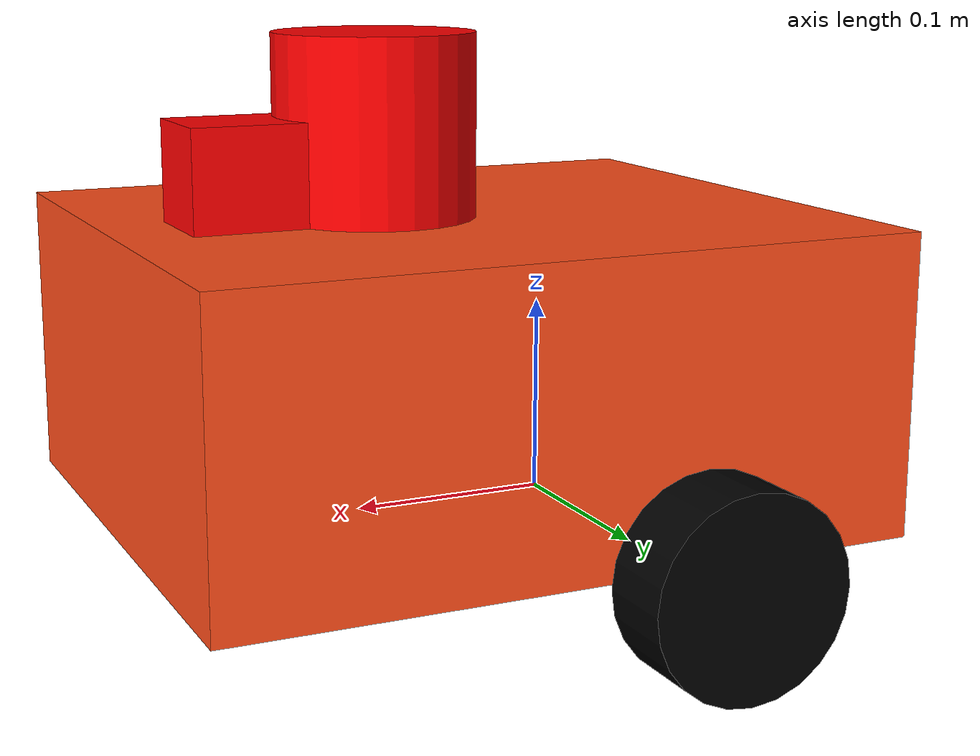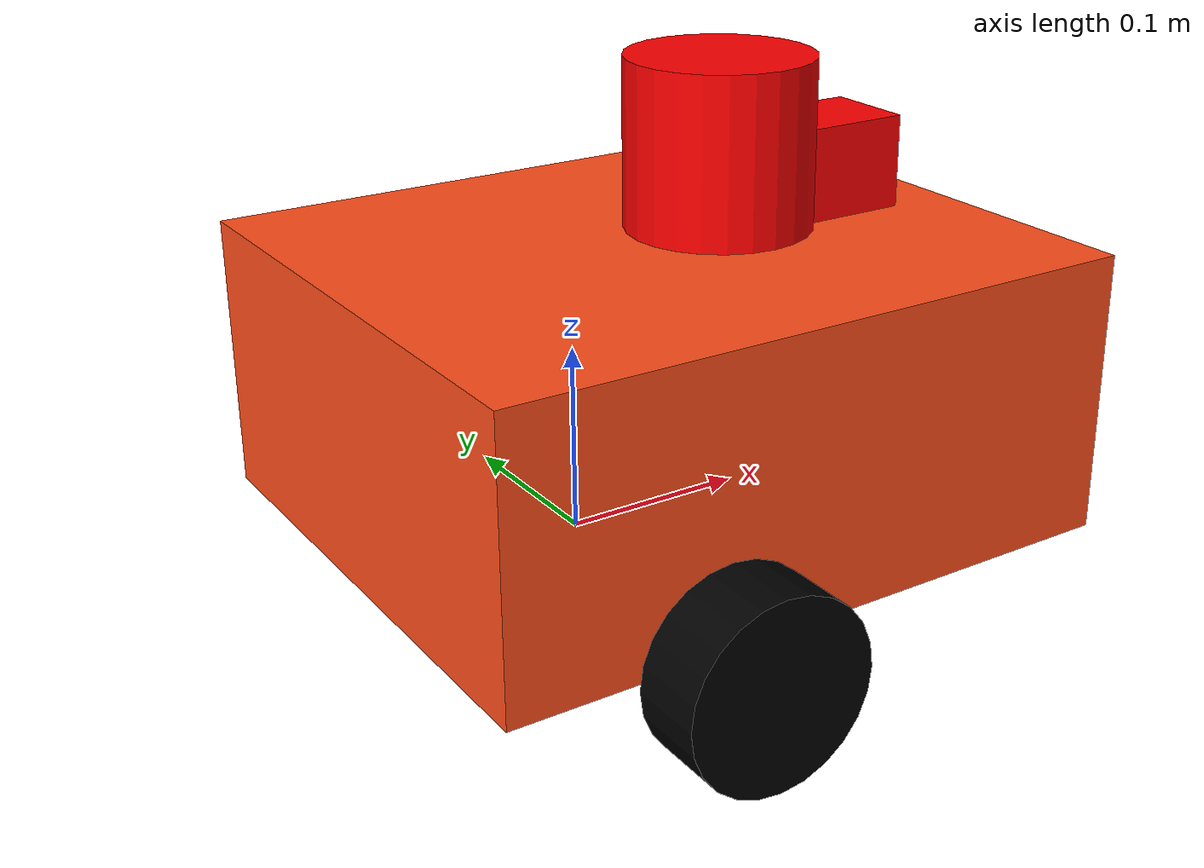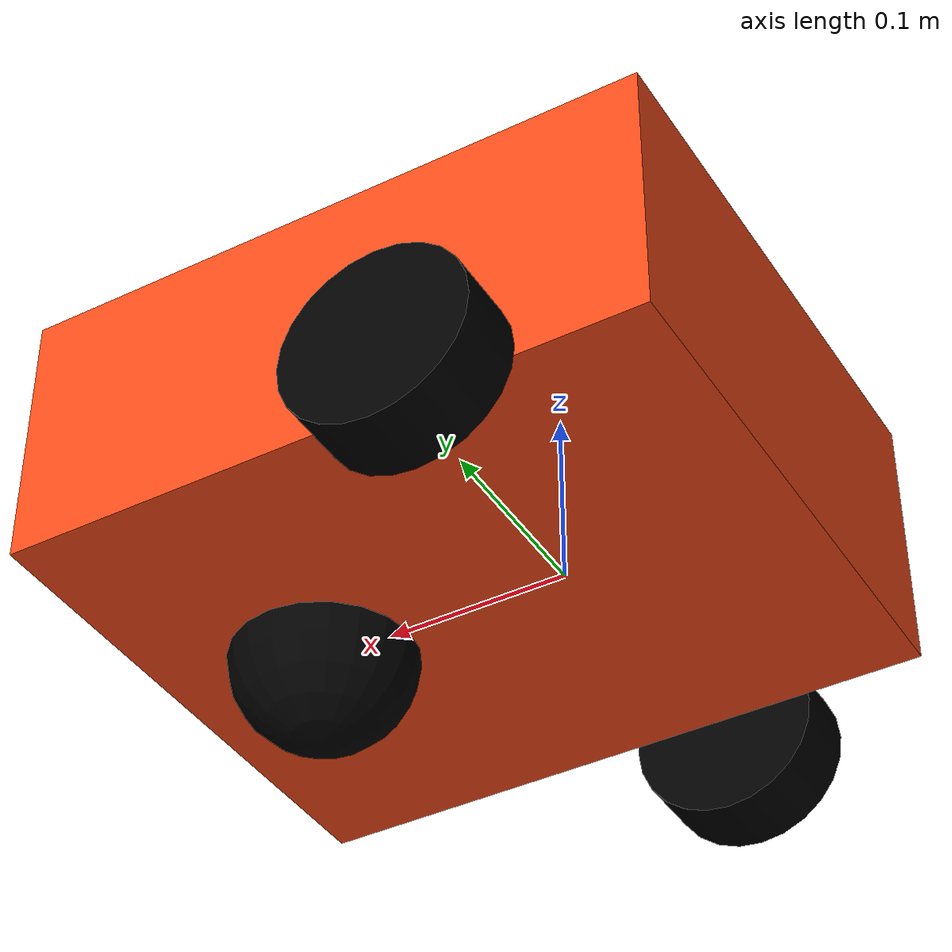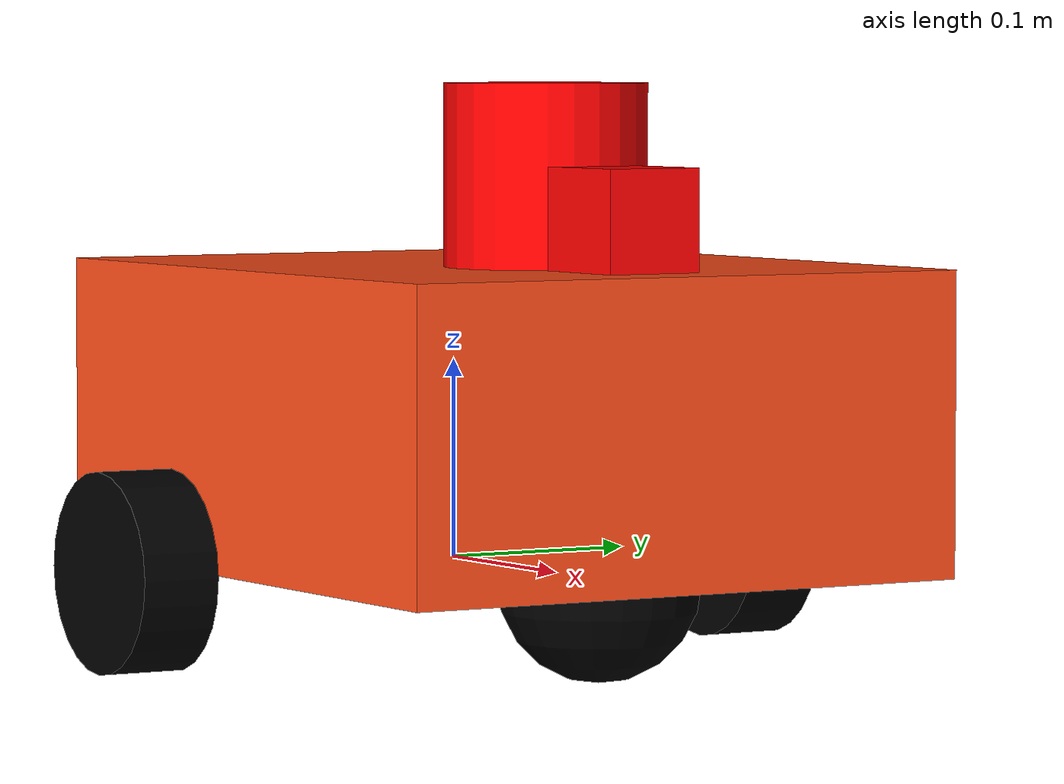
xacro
<?xml version='1.0'?>

<robot name="my_robot" xmlns:xacro="http://www.ros.org/wiki/xacro">

    <material name = "orange">
        <color rgba = "1 0.3 0.1 1"/>
    </material>
    <material name = "red">
        <color rgba = "1 0 0 1"/>
    </material>
    <material name = "black">
        <color rgba = "0 0 0 1"/>
    </material>

    <!--Base linkd-->
    <link name = "base_link">

    </link>

    <!--Chassis link-->
    <joint name = "chassis_joint" type = "fixed">
        <parent link= "base_link"/>
        <child link = "chassis"/>
        <origin xyz = "-0.1 0 0"/>
    </joint>

    <link name = "chassis">
        <visual>
            <material name = "orange"/>
            <origin xyz = "0.15 0 0.075"/>
            <geometry>
                <box size = "0.35 0.3 0.15"/>
            </geometry>
        </visual>
        <collision>
            <origin xyz = "0.15 0 0.075"/>
            <geometry>
                <box size = "0.35 0.3 0.15"/>
            </geometry>
        </collision>
        <inertial>
            <mass value="10"/>
            <geometry>
                <box size = "0.35 0.3 0.15"/>
            </geometry>
            <origin xyz = "0.15 0 0.075"/>
            <inertia
                ixx="0.1" ixy="0" ixz="0"
                iyy="0.1" iyz="0"
                izz="0.1"
            />
        </inertial>
    </link>

    <!--Left wheel link-->
    <joint name = "left_wheel_joint" type = "continuous">
        <parent link = "chassis"/>
        <child link = "left_wheel"/>
        <origin xyz = "0.09 0.175 0" rpy = "0 0 0 "/>
        <axis xyz = "0 1 0"/>
    </joint>

    <link name = "left_wheel">
        <visual>
            <material name = "black"/>
                <origin xyz = "0 0 0" rpy= "0 ${pi/2} ${pi/2}"/>
            <geometry>
                <cylinder radius = "0.05" length = "0.04"/>
            </geometry>
        </visual>
         <collision>
                <origin xyz = "0 0 0" rpy= "0 ${pi/2} ${pi/2}"/>
            <geometry>
                <cylinder radius = "0.05" length = "0.04"/>
            </geometry>
        </collision>
        <inertial>
            <mass value="5.0"/>
            <origin xyz = "0 0 0" rpy= "0 ${pi/2} ${pi/2}"/>
            <geometry>
		        <cylinder radius = "0.05" length = "0.04"/>
	        </geometry>
            <inertia
                ixx="0.1" ixy="0" ixz="0"
                iyy="0.1" iyz="0"
                izz="0.1"
            />
        </inertial>
    </link>

    <!--Right wheel link-->
    <joint name = "right_wheel_joint" type = "continuous">
        <parent link = "chassis"/>
        <child link = "right_wheel"/>
        <origin xyz = "0.09 -0.175 0" rpy = "0 0 0 "/>
        <axis xyz = "0 1 0"/>
    </joint>

    <link name = "right_wheel">
        <visual>
            <material name = "black"/>
            <origin xyz = "0 0 0" rpy= "0 ${pi/2} ${pi/2}"/>
            <geometry>
                <cylinder radius = "0.05" length = "0.04"/>
            </geometry>
        </visual>
        <collision>
            <origin xyz = "0 0 0" rpy= "0 ${pi/2} ${pi/2}"/>
            <geometry>
                <cylinder radius = "0.05" length = "0.04"/>
            </geometry>
        </collision>
        <inertial>
            <mass value="5.0"/>
            <origin xyz = "0 0 0" rpy= "0 ${pi/2} ${pi/2}"/>
            <geometry>
		        <cylinder radius = "0.05" length = "0.04"/>
	        </geometry>
            <inertia
                ixx="0.1" ixy="0" ixz="0"
                iyy="0.1" iyz="0"
                izz="0.1"
            />
        </inertial>
    </link>

    <!--Caster wheel link-->
    <joint name = "caster_wheel_joint" type = "fixed">
        <parent link= "chassis"/>
        <child link = "caster_wheel"/>
        <origin xyz = "0.24 0 0"/>
    </joint>

    <link name = "caster_wheel">
        <visual>
            <material name = "black"/>
            <geometry>
                <sphere radius = "0.05"/>
            </geometry>
        </visual>
        <collision>
            <geometry>
                <sphere radius = "0.05"/>
            </geometry>
        </collision>
        <inertial>
            <mass value="5.0"/>
            <origin xyz="0 0 0" rpy="0 0 0 "/>
            <geometry>
		        <sphere radius = "0.05"/>
	        </geometry>
            <inertia
                ixx="0.1" ixy="0" ixz="0"
                iyy="0.1" iyz="0"
                izz="0.1"
            />
        </inertial>
    </link>

    <!--Tower link-->
    <joint name = "tower_joint" type = "fixed">
        <parent link = "chassis"/>
        <child link = "tower"/>
        <origin xyz = "0.19 0.0 0.15"/>
    </joint>

    <link name = "tower">
        <visual>
            <material name = "red"/>
            <geometry>
                <cylinder radius = "0.05" length = "0.18"/>
            </geometry>
        </visual>
        <collision>
            <geometry>
                <cylinder radius = "0.05" length = "0.18"/>
            </geometry>
        </collision>
        <inertial>
            <mass value="0.1"/>
            <origin xyz="0 0 0" rpy="0 0 0"/>
            <geometry>
                <cylinder radius = "0.05" length = "0.18"/>
            </geometry>
            <inertia
                ixx="0.1" ixy="0" ixz="0"
                iyy="0.1" iyz="0"
                izz="0.1"
            />
        </inertial>
    </link>

    <!--Holder link-->
    <joint name = "holder_joint" type = "fixed">
        <parent link= "chassis"/>
        <child link = "holder"/>
        <origin xyz = "0.24 0 0.15"/>
    </joint>

    <link name = "holder">
        <visual>
            <material name = "red"/>
            <geometry>
                <box size = "0.1 0.05 0.1"/>
            </geometry>
        </visual>
        <collision>
            <geometry>
                <box size = "0.1 0.05 0.1"/>
            </geometry>
        </collision>
        <inertial>
            <mass value="0.1"/>
            <origin xyz="0 0 0" rpy="0 0 0"/>
            <geometry>
                <box size = "0.1 0.05 0.1"/>
            </geometry>
            <inertia
                ixx="0.1" ixy="0" ixz="0"
                iyy="0.1" iyz="0"
                izz="0.1"
            />
        </inertial>
    </link>
</robot>
